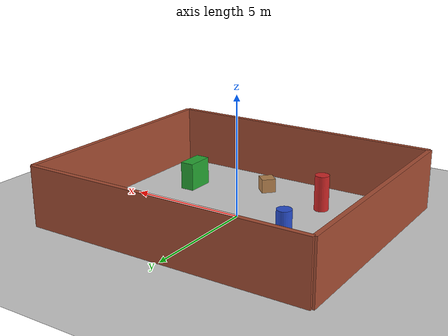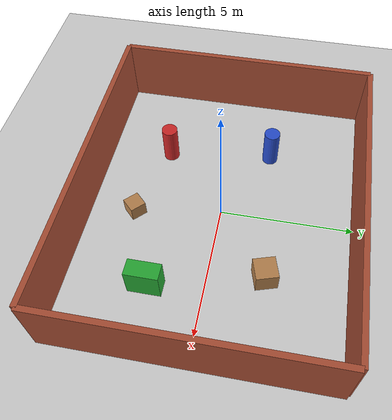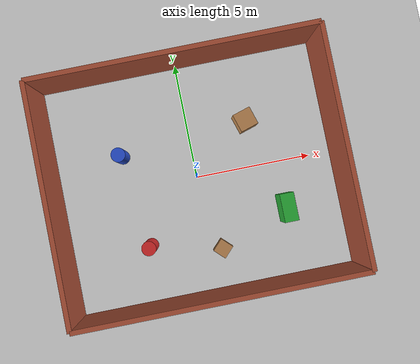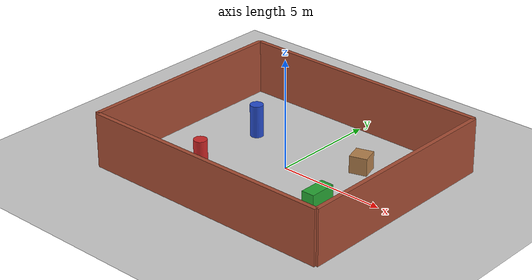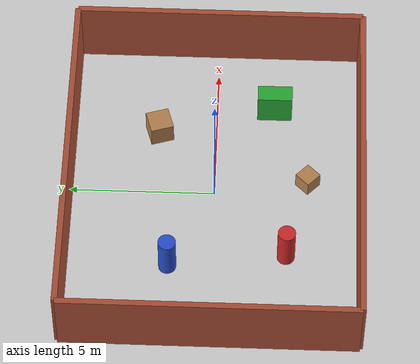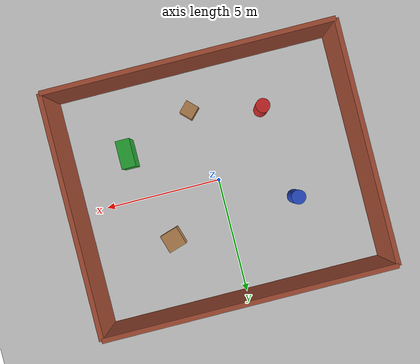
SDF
<?xml version="1.0"?>
<sdf version="1.6">
  <world name="indoor">
    <include><uri>model://sun</uri></include>
    <include><uri>model://ground_plane</uri></include>

    <!-- ---- room walls (one static model, brick-textured) ---- -->
    <model name="room">
      <static>true</static>
      <link name="walls">
        <!-- north (+Y) -->
        <collision name="n_c"><pose>0 5 1.25 0 0 0</pose><geometry><box><size>12 0.2 2.5</size></box></geometry></collision>
        <visual   name="n_v"><pose>0 5 1.25 0 0 0</pose><geometry><box><size>12 0.2 2.5</size></box></geometry>
          <material><script><uri>file://media/materials/scripts/gazebo.material</uri><name>Gazebo/Bricks</name></script></material></visual>
        <!-- south (-Y) -->
        <collision name="s_c"><pose>0 -5 1.25 0 0 0</pose><geometry><box><size>12 0.2 2.5</size></box></geometry></collision>
        <visual   name="s_v"><pose>0 -5 1.25 0 0 0</pose><geometry><box><size>12 0.2 2.5</size></box></geometry>
          <material><script><uri>file://media/materials/scripts/gazebo.material</uri><name>Gazebo/Bricks</name></script></material></visual>
        <!-- east (+X) -->
        <collision name="e_c"><pose>6 0 1.25 0 0 0</pose><geometry><box><size>0.2 10 2.5</size></box></geometry></collision>
        <visual   name="e_v"><pose>6 0 1.25 0 0 0</pose><geometry><box><size>0.2 10 2.5</size></box></geometry>
          <material><script><uri>file://media/materials/scripts/gazebo.material</uri><name>Gazebo/Bricks</name></script></material></visual>
        <!-- west (-X) -->
        <collision name="w_c"><pose>-6 0 1.25 0 0 0</pose><geometry><box><size>0.2 10 2.5</size></box></geometry></collision>
        <visual   name="w_v"><pose>-6 0 1.25 0 0 0</pose><geometry><box><size>0.2 10 2.5</size></box></geometry>
          <material><script><uri>file://media/materials/scripts/gazebo.material</uri><name>Gazebo/Bricks</name></script></material></visual>
      </link>
    </model>

    <!-- ---- obstacles / landmarks (varied shapes + colours for features) ---- -->
    <model name="crate_wood"><static>true</static><pose>2.5 2.0 0.4 0 0 0.3</pose>
      <link name="l"><collision name="c"><geometry><box><size>0.8 0.8 0.8</size></box></geometry></collision>
        <visual name="v"><geometry><box><size>0.8 0.8 0.8</size></box></geometry>
          <material><script><uri>file://media/materials/scripts/gazebo.material</uri><name>Gazebo/Wood</name></script></material></visual></link></model>

    <model name="pillar_a"><static>true</static><pose>-3.0 1.5 0.75 0 0 0</pose>
      <link name="l"><collision name="c"><geometry><cylinder><radius>0.3</radius><length>1.5</length></cylinder></geometry></collision>
        <visual name="v"><geometry><cylinder><radius>0.3</radius><length>1.5</length></cylinder></geometry>
          <material><script><uri>file://media/materials/scripts/gazebo.material</uri><name>Gazebo/Blue</name></script></material></visual></link></model>

    <model name="pillar_b"><static>true</static><pose>-2.5 -2.5 0.75 0 0 0</pose>
      <link name="l"><collision name="c"><geometry><cylinder><radius>0.3</radius><length>1.5</length></cylinder></geometry></collision>
        <visual name="v"><geometry><cylinder><radius>0.3</radius><length>1.5</length></cylinder></geometry>
          <material><script><uri>file://media/materials/scripts/gazebo.material</uri><name>Gazebo/Red</name></script></material></visual></link></model>

    <model name="box_tall"><static>true</static><pose>3.5 -2.0 0.6 0 0 0</pose>
      <link name="l"><collision name="c"><geometry><box><size>0.6 1.2 1.2</size></box></geometry></collision>
        <visual name="v"><geometry><box><size>0.6 1.2 1.2</size></box></geometry>
          <material><script><uri>file://media/materials/scripts/gazebo.material</uri><name>Gazebo/Green</name></script></material></visual></link></model>

    <model name="crate_wood2"><static>true</static><pose>0.5 -3.2 0.3 0 0 0.8</pose>
      <link name="l"><collision name="c"><geometry><box><size>0.6 0.6 0.6</size></box></geometry></collision>
        <visual name="v"><geometry><box><size>0.6 0.6 0.6</size></box></geometry>
          <material><script><uri>file://media/materials/scripts/gazebo.material</uri><name>Gazebo/Wood</name></script></material></visual></link></model>

    <physics type="ode"><real_time_update_rate>1000</real_time_update_rate><max_step_size>0.001</max_step_size></physics>
    <scene><ambient>0.5 0.5 0.5 1</ambient><background>0.7 0.7 0.7 1</background><shadows>false</shadows></scene>
  </world>
</sdf>
